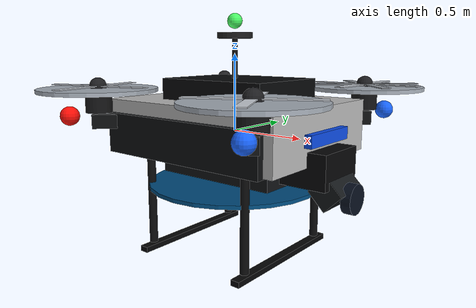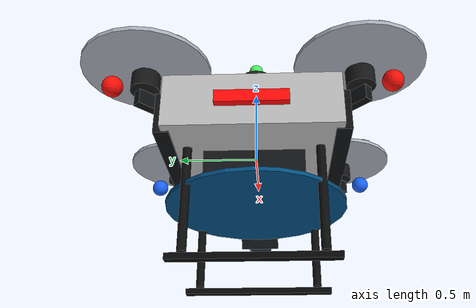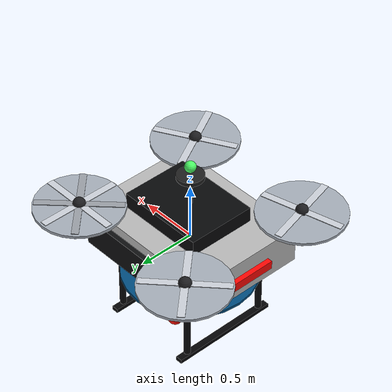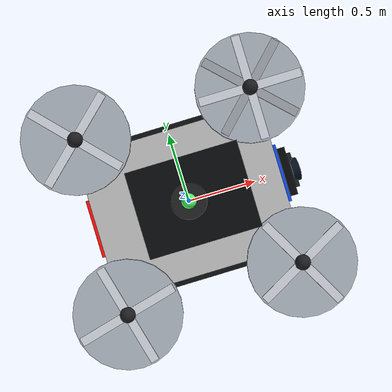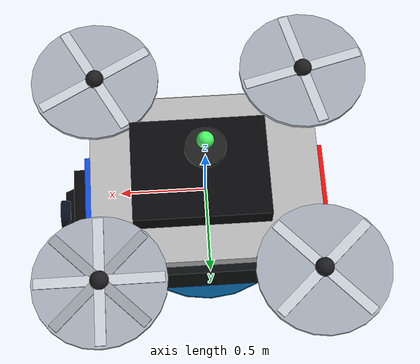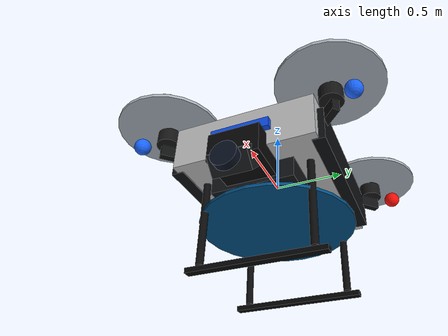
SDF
<?xml version="1.0"?>
<sdf version="1.7">

  <model name="drone_marker">
    <static>false</static>
    <allow_auto_disable>false</allow_auto_disable>

    <link name="drone">

      <gravity>false</gravity>
      <kinematic>true</kinematic>
      <self_collide>false</self_collide>

      <!-- ============================================================
           FUSELAGE
           ============================================================ -->
      <!-- Main hull (team colour) -->
      <visual name="main_body">
        <pose>0 0 0.045 0 0 0</pose>
        <geometry><box><size>1.32 1.02 0.33</size></box></geometry>
        <material>
          <ambient>__RED__ __GREEN__ __BLUE__ 1</ambient>
          <diffuse>__RED__ __GREEN__ __BLUE__ 1</diffuse>
          <specular>0.6 0.6 0.6 1</specular>
        </material>
      </visual>

      <!-- Body side skirts -->
      <visual name="skirt_left">
        <pose>0 0.51 0 0 0 0</pose>
        <geometry><box><size>1.2 0.09 0.255</size></box></geometry>
        <material>
          <ambient>0.03 0.035 0.04 1</ambient>
          <diffuse>0.05 0.055 0.06 1</diffuse>
          <specular>0.5 0.5 0.5 1</specular>
        </material>
      </visual>
      <visual name="skirt_right">
        <pose>0 -0.51 0 0 0 0</pose>
        <geometry><box><size>1.2 0.09 0.255</size></box></geometry>
        <material>
          <ambient>0.03 0.035 0.04 1</ambient>
          <diffuse>0.05 0.055 0.06 1</diffuse>
          <specular>0.5 0.5 0.5 1</specular>
        </material>
      </visual>

      <!-- Electronics hump -->
      <visual name="upper_housing">
        <pose>0.03 0 0.255 0 0 0</pose>
        <geometry><box><size>0.78 0.6 0.18</size></box></geometry>
        <material>
          <ambient>0.02 0.02 0.025 1</ambient>
          <diffuse>0.03 0.033 0.04 1</diffuse>
          <specular>0.85 0.85 0.85 1</specular>
        </material>
      </visual>

      <!-- Battery / belly pack -->
      <visual name="belly_pack">
        <pose>0.06 0 -0.195 0 0 0</pose>
        <geometry><box><size>0.84 0.6 0.15</size></box></geometry>
        <material>
          <ambient>0.045 0.05 0.055 1</ambient>
          <diffuse>0.065 0.07 0.08 1</diffuse>
          <specular>0.4 0.4 0.4 1</specular>
        </material>
      </visual>

      <!-- ============================================================
           CAMERA / SENSOR FRONT
           ============================================================ -->
      <visual name="camera_mount">
        <pose>0.615 0 -0.135 0 0 0</pose>
        <geometry><box><size>0.33 0.36 0.21</size></box></geometry>
        <material>
          <ambient>0.02 0.02 0.025 1</ambient>
          <diffuse>0.025 0.025 0.03 1</diffuse>
          <specular>0.5 0.5 0.5 1</specular>
        </material>
      </visual>
      <visual name="gimbal_tilt">
        <pose>0.75 0 -0.264 0 0.785 0</pose>
        <geometry><box><size>0.15 0.27 0.15</size></box></geometry>
        <material>
          <ambient>0.05 0.055 0.06 1</ambient>
          <diffuse>0.08 0.09 0.1 1</diffuse>
        </material>
      </visual>
      <visual name="camera_lens">
        <pose>0.855 0 -0.3 0 1.5708 0</pose>
        <geometry><cylinder><radius>0.09</radius><length>0.06</length></cylinder></geometry>
        <material>
          <ambient>0.03 0.05 0.08 1</ambient>
          <diffuse>0.03 0.06 0.12 1</diffuse>
          <specular>0.95 0.95 1 1</specular>
        </material>
      </visual>

      <!-- GPS mast + puck -->
      <visual name="gps_mast">
        <pose>0 0 0.45 0 0 0</pose>
        <geometry><cylinder><radius>0.018</radius><length>0.3</length></cylinder></geometry>
        <material><diffuse>0.06 0.06 0.06 1</diffuse></material>
      </visual>
      <visual name="gps_puck">
        <pose>0 0 0.615 0 0 0</pose>
        <geometry><cylinder><radius>0.114</radius><length>0.036</length></cylinder></geometry>
        <material>
          <ambient>0.1 0.1 0.1 1</ambient>
          <diffuse>0.12 0.12 0.12 1</diffuse>
          <specular>0.6 0.6 0.6 1</specular>
        </material>
      </visual>

      <!-- ============================================================
           ARMS + MOTORS (X frame)
           ============================================================ -->
      <visual name="arm_front_right">
        <pose>0.33 0.33 0.075 0 0 0.785398</pose>
        <geometry><box><size>0.9 0.054 0.09</size></box></geometry>
        <material>
          <ambient>0.035 0.04 0.045 1</ambient>
          <diffuse>0.06 0.065 0.07 1</diffuse>
          <specular>0.7 0.7 0.7 1</specular>
        </material>
      </visual>
      <visual name="arm_front_left">
        <pose>0.33 -0.33 0.075 0 0 -0.785398</pose>
        <geometry><box><size>0.9 0.054 0.09</size></box></geometry>
        <material>
          <ambient>0.035 0.04 0.045 1</ambient>
          <diffuse>0.06 0.065 0.07 1</diffuse>
          <specular>0.7 0.7 0.7 1</specular>
        </material>
      </visual>
      <visual name="arm_rear_right">
        <pose>-0.33 -0.33 0.075 0 0 0.785398</pose>
        <geometry><box><size>0.9 0.054 0.09</size></box></geometry>
        <material>
          <ambient>0.035 0.04 0.045 1</ambient>
          <diffuse>0.06 0.065 0.07 1</diffuse>
          <specular>0.7 0.7 0.7 1</specular>
        </material>
      </visual>
      <visual name="arm_rear_left">
        <pose>-0.33 0.33 0.075 0 0 -0.785398</pose>
        <geometry><box><size>0.9 0.054 0.09</size></box></geometry>
        <material>
          <ambient>0.035 0.04 0.045 1</ambient>
          <diffuse>0.06 0.065 0.07 1</diffuse>
          <specular>0.7 0.7 0.7 1</specular>
        </material>
      </visual>

      <!-- Motor pods -->
      <visual name="motor_front_right">
        <pose>0.615 0.615 0.186 0 0 0</pose>
        <geometry><cylinder><radius>0.084</radius><length>0.105</length></cylinder></geometry>
        <material><diffuse>0.08 0.08 0.085 1</diffuse><specular>0.8 0.8 0.8 1</specular></material>
      </visual>
      <visual name="motor_front_left">
        <pose>0.615 -0.615 0.186 0 0 0</pose>
        <geometry><cylinder><radius>0.084</radius><length>0.105</length></cylinder></geometry>
        <material><diffuse>0.08 0.08 0.085 1</diffuse><specular>0.8 0.8 0.8 1</specular></material>
      </visual>
      <visual name="motor_rear_right">
        <pose>-0.615 -0.615 0.186 0 0 0</pose>
        <geometry><cylinder><radius>0.084</radius><length>0.105</length></cylinder></geometry>
        <material><diffuse>0.08 0.08 0.085 1</diffuse><specular>0.8 0.8 0.8 1</specular></material>
      </visual>
      <visual name="motor_rear_left">
        <pose>-0.615 0.615 0.186 0 0 0</pose>
        <geometry><cylinder><radius>0.084</radius><length>0.105</length></cylinder></geometry>
        <material><diffuse>0.08 0.08 0.085 1</diffuse><specular>0.8 0.8 0.8 1</specular></material>
      </visual>

      <!-- ============================================================
           ROTORS (semi-transparent spin discs + blade cross)
           ============================================================ -->
      <visual name="rotor_disc_front_right">
        <pose>0.615 0.615 0.276 0 0 0</pose>
        <geometry><cylinder><radius>0.375</radius><length>0.024</length></cylinder></geometry>
        <material>
          <ambient>0.55 0.58 0.62 1</ambient>
          <diffuse>0.65 0.68 0.72 1</diffuse>
          <transparency>0.55</transparency>
        </material>
      </visual>
      <visual name="rotor_blade_a_fr">
        <pose>0.615 0.615 0.3 0 0 0</pose>
        <geometry><box><size>0.72 0.06 0.006</size></box></geometry>
        <material><ambient>0.7 0.72 0.75 1</ambient><diffuse>0.8 0.82 0.85 1</diffuse></material>
      </visual>
      <visual name="rotor_blade_b_fr">
        <pose>0.615 0.615 0.3 0 0 1.5708</pose>
        <geometry><box><size>0.72 0.06 0.006</size></box></geometry>
        <material><ambient>0.7 0.72 0.75 1</ambient><diffuse>0.8 0.82 0.85 1</diffuse></material>
      </visual>
      <visual name="rotor_blade_c_fr">
        <pose>0.615 0.615 0.3 0 0 0.785</pose>
        <geometry><box><size>0.72 0.06 0.006</size></box></geometry>
        <material><ambient>0.5 0.52 0.55 1</ambient><diffuse>0.6 0.62 0.65 1</diffuse></material>
      </visual>
      <visual name="rotor_blade_d_fr">
        <pose>0.615 0.615 0.3 0 0 2.356</pose>
        <geometry><box><size>0.72 0.06 0.006</size></box></geometry>
        <material><ambient>0.5 0.52 0.55 1</ambient><diffuse>0.6 0.62 0.65 1</diffuse></material>
      </visual>
      <visual name="rotor_hub_front_right">
        <pose>0.615 0.615 0.3 0 0 0</pose>
        <geometry><sphere><radius>0.054</radius></sphere></geometry>
        <material><diffuse>0.12 0.12 0.13 1</diffuse><specular>0.8 0.8 0.8 1</specular></material>
      </visual>

      <visual name="rotor_disc_front_left">
        <pose>0.615 -0.615 0.276 0 0 0</pose>
        <geometry><cylinder><radius>0.375</radius><length>0.024</length></cylinder></geometry>
        <material>
          <ambient>0.55 0.58 0.62 1</ambient>
          <diffuse>0.65 0.68 0.72 1</diffuse>
          <transparency>0.55</transparency>
        </material>
      </visual>
      <visual name="rotor_blade_a_fl">
        <pose>0.615 -0.615 0.3 0 0 0.5</pose>
        <geometry><box><size>0.72 0.06 0.006</size></box></geometry>
        <material><ambient>0.7 0.72 0.75 1</ambient><diffuse>0.8 0.82 0.85 1</diffuse></material>
      </visual>
      <visual name="rotor_blade_b_fl">
        <pose>0.615 -0.615 0.3 0 0 2.0708</pose>
        <geometry><box><size>0.72 0.06 0.006</size></box></geometry>
        <material><ambient>0.7 0.72 0.75 1</ambient><diffuse>0.8 0.82 0.85 1</diffuse></material>
      </visual>
      <visual name="rotor_hub_front_left">
        <pose>0.615 -0.615 0.3 0 0 0</pose>
        <geometry><sphere><radius>0.054</radius></sphere></geometry>
        <material><diffuse>0.12 0.12 0.13 1</diffuse><specular>0.8 0.8 0.8 1</specular></material>
      </visual>

      <visual name="rotor_disc_rear_right">
        <pose>-0.615 -0.615 0.276 0 0 0</pose>
        <geometry><cylinder><radius>0.375</radius><length>0.024</length></cylinder></geometry>
        <material>
          <ambient>0.55 0.58 0.62 1</ambient>
          <diffuse>0.65 0.68 0.72 1</diffuse>
          <transparency>0.55</transparency>
        </material>
      </visual>
      <visual name="rotor_blade_a_rr">
        <pose>-0.615 -0.615 0.3 0 0 0.25</pose>
        <geometry><box><size>0.72 0.06 0.006</size></box></geometry>
        <material><ambient>0.7 0.72 0.75 1</ambient><diffuse>0.8 0.82 0.85 1</diffuse></material>
      </visual>
      <visual name="rotor_blade_b_rr">
        <pose>-0.615 -0.615 0.3 0 0 1.8208</pose>
        <geometry><box><size>0.72 0.06 0.006</size></box></geometry>
        <material><ambient>0.7 0.72 0.75 1</ambient><diffuse>0.8 0.82 0.85 1</diffuse></material>
      </visual>
      <visual name="rotor_hub_rear_right">
        <pose>-0.615 -0.615 0.3 0 0 0</pose>
        <geometry><sphere><radius>0.054</radius></sphere></geometry>
        <material><diffuse>0.12 0.12 0.13 1</diffuse><specular>0.8 0.8 0.8 1</specular></material>
      </visual>

      <visual name="rotor_disc_rear_left">
        <pose>-0.615 0.615 0.276 0 0 0</pose>
        <geometry><cylinder><radius>0.375</radius><length>0.024</length></cylinder></geometry>
        <material>
          <ambient>0.55 0.58 0.62 1</ambient>
          <diffuse>0.65 0.68 0.72 1</diffuse>
          <transparency>0.55</transparency>
        </material>
      </visual>
      <visual name="rotor_blade_a_rl">
        <pose>-0.615 0.615 0.3 0 0 0.75</pose>
        <geometry><box><size>0.72 0.06 0.006</size></box></geometry>
        <material><ambient>0.7 0.72 0.75 1</ambient><diffuse>0.8 0.82 0.85 1</diffuse></material>
      </visual>
      <visual name="rotor_blade_b_rl">
        <pose>-0.615 0.615 0.3 0 0 2.3208</pose>
        <geometry><box><size>0.72 0.06 0.006</size></box></geometry>
        <material><ambient>0.7 0.72 0.75 1</ambient><diffuse>0.8 0.82 0.85 1</diffuse></material>
      </visual>
      <visual name="rotor_hub_rear_left">
        <pose>-0.615 0.615 0.3 0 0 0</pose>
        <geometry><sphere><radius>0.054</radius></sphere></geometry>
        <material><diffuse>0.12 0.12 0.13 1</diffuse><specular>0.8 0.8 0.8 1</specular></material>
      </visual>

      <!-- ============================================================
           LANDING GEAR
           ============================================================ -->
      <visual name="leg_strut_fl">
        <pose>0.39 0.39 -0.42 0 0 0</pose>
        <geometry><cylinder><radius>0.027</radius><length>0.66</length></cylinder></geometry>
        <material><diffuse>0.04 0.04 0.045 1</diffuse></material>
      </visual>
      <visual name="leg_strut_fr">
        <pose>0.39 -0.39 -0.42 0 0 0</pose>
        <geometry><cylinder><radius>0.027</radius><length>0.66</length></cylinder></geometry>
        <material><diffuse>0.04 0.04 0.045 1</diffuse></material>
      </visual>
      <visual name="leg_strut_rl">
        <pose>-0.39 0.39 -0.42 0 0 0</pose>
        <geometry><cylinder><radius>0.027</radius><length>0.66</length></cylinder></geometry>
        <material><diffuse>0.04 0.04 0.045 1</diffuse></material>
      </visual>
      <visual name="leg_strut_rr">
        <pose>-0.39 -0.39 -0.42 0 0 0</pose>
        <geometry><cylinder><radius>0.027</radius><length>0.66</length></cylinder></geometry>
        <material><diffuse>0.04 0.04 0.045 1</diffuse></material>
      </visual>
      <visual name="foot_front">
        <pose>0.39 0 -0.78 0 0 0</pose>
        <geometry><box><size>0.06 0.96 0.036</size></box></geometry>
        <material><diffuse>0.02 0.02 0.022 1</diffuse></material>
      </visual>
      <visual name="foot_rear">
        <pose>-0.39 0 -0.78 0 0 0</pose>
        <geometry><box><size>0.06 0.96 0.036</size></box></geometry>
        <material><diffuse>0.02 0.02 0.022 1</diffuse></material>
      </visual>

      <!-- ============================================================
           LIGHTS (eye-catching)
           ============================================================ -->
      <visual name="nav_bar_front">
        <pose>0.675 0 0.036 0 0 0</pose>
        <geometry><box><size>0.06 0.42 0.075</size></box></geometry>
        <material>
          <ambient>0.05 0.3 0.9 1</ambient>
          <diffuse>0.05 0.3 0.9 1</diffuse>
          <emissive>0.15 0.45 1 1</emissive>
        </material>
      </visual>
      <visual name="nav_bar_rear">
        <pose>-0.675 0 0.036 0 0 0</pose>
        <geometry><box><size>0.06 0.42 0.075</size></box></geometry>
        <material>
          <ambient>1 0.03 0.02 1</ambient>
          <diffuse>1 0.03 0.02 1</diffuse>
          <emissive>1 0.05 0.02 1</emissive>
        </material>
      </visual>

      <visual name="led_front_right">
        <pose>0.69 0.78 0.12 0 0 0</pose>
        <geometry><sphere><radius>0.06</radius></sphere></geometry>
        <material>
          <ambient>0.05 0.3 1 1</ambient>
          <diffuse>0.1 0.4 1 1</diffuse>
          <emissive>0.1 0.5 1 1</emissive>
        </material>
      </visual>
      <visual name="led_front_left">
        <pose>0.69 -0.78 0.12 0 0 0</pose>
        <geometry><sphere><radius>0.06</radius></sphere></geometry>
        <material>
          <ambient>0.05 0.3 1 1</ambient>
          <diffuse>0.1 0.4 1 1</diffuse>
          <emissive>0.1 0.5 1 1</emissive>
        </material>
      </visual>
      <visual name="led_rear_right">
        <pose>-0.69 -0.78 0.12 0 0 0</pose>
        <geometry><sphere><radius>0.06</radius></sphere></geometry>
        <material>
          <ambient>1 0.04 0.02 1</ambient>
          <diffuse>1 0.06 0.03 1</diffuse>
          <emissive>1 0.03 0.02 1</emissive>
        </material>
      </visual>
      <visual name="led_rear_left">
        <pose>-0.69 0.78 0.12 0 0 0</pose>
        <geometry><sphere><radius>0.06</radius></sphere></geometry>
        <material>
          <ambient>1 0.04 0.02 1</ambient>
          <diffuse>1 0.06 0.03 1</diffuse>
          <emissive>1 0.03 0.02 1</emissive>
        </material>
      </visual>

      <!-- Status beacon on top of the GPS puck -->
      <visual name="status_beacon">
        <pose>0 0 0.705 0 0 0</pose>
        <geometry><sphere><radius>0.048</radius></sphere></geometry>
        <material>
          <ambient>0.2 1 0.3 1</ambient>
          <diffuse>0.3 1 0.4 1</diffuse>
          <emissive>0.4 1 0.5 1</emissive>
        </material>
      </visual>

      <!-- Under-glow halo: keeps the swarm readable from a distance -->
      <visual name="glow_halo">
        <pose>0 0 -0.345 0 0 0</pose>
        <geometry><cylinder><radius>0.57</radius><length>0.024</length></cylinder></geometry>
        <material>
          <ambient>0 0.25 0.4 1</ambient>
          <diffuse>0 0.3 0.5 1</diffuse>
          <emissive>0 0.35 0.55 1</emissive>
          <lighting>false</lighting>
          <transparency>0.35</transparency>
        </material>
      </visual>

      <!-- Compact collision body -->
      <collision name="collision">
        <geometry><box><size>1.38 1.02 0.9</size></box></geometry>
        <surface>
          <friction><ode><mu>0</mu><mu2>0</mu2></ode></friction>
        </surface>
      </collision>

    </link>
  </model>
</sdf>
